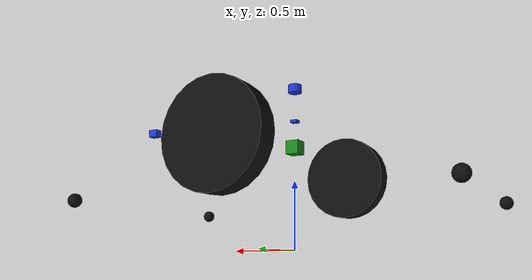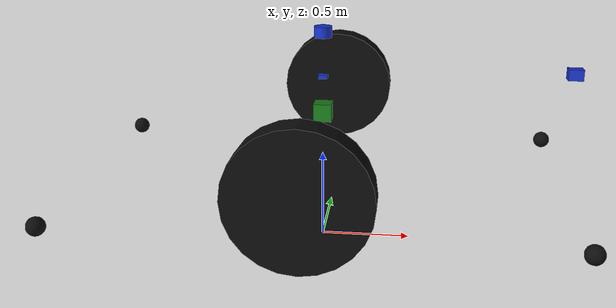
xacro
<?xml version="1.0"?>
<robot name="diff_robot_xacro" xmlns:xacro="http://ros.org/wiki/xacro">

  <!-- ===================== Parameters ===================== -->
  <!-- chassis -->
  <xacro:property name="base_length" value="2.8"/>
  <xacro:property name="base_width"  value="1.8"/>
  <xacro:property name="base_height" value="0.8"/>
  <xacro:property name="base_mass"   value="150.0"/>

  <!-- wheels (drive) -->
  <xacro:property name="wheel_radius"    value="0.35"/>
  <xacro:property name="wheel_thickness" value="0.15"/>
  <xacro:property name="wheel_mass"      value="10.0"/>
  <xacro:property name="track_width"     value="1.50"/>  <!-- (참고용) -->
  <!-- 지상고: 샤시 바닥이 지면에서 뜨도록 양수로 -->
  <xacro:property name="ground_clearance" value="-0.05"/>
  <xacro:property name="caster_lift" value="0.001"/>

  <!-- sensors -->
  <xacro:property name="lidar_mass" value="1.0"/>
  <xacro:property name="imu_mass"   value="0.2"/>
  <xacro:property name="cam_mass"   value="0.3"/>

  <!-- computed helpers -->
  <xacro:property name="half_h"  value="${base_height/2.0}"/>
  <xacro:property name="half_w"  value="${base_width/2.0}"/>
  <xacro:property name="half_l"  value="${base_length/2.0}"/>
  <xacro:property name="wheel_joint_z" value="${wheel_radius - half_h + ground_clearance}"/> <!-- usually negative -->
  <!-- 차체 밖으로 살짝 내보낸 위치 -->
  <xacro:property name="wheel_y" value="${half_w + wheel_thickness/2.0 + 0.01}"/>

  <!-- sensor poses (relative to base_link origin at box center) -->
  <xacro:property name="lidar_z" value="${half_h + 0.05}"/>   <!-- roof + 5cm -->
  <xacro:property name="imu_z"   value="0.2"/>
  <xacro:property name="cam_x"   value="${half_l - 0.05}"/>   <!-- just inside front face -->
  <xacro:property name="cam_z"   value="0.25"/>

  <!-- ===================== GZ Sim drive/odom params ===================== -->
  <xacro:property name="odometry_source" value="world"/>   <!-- encoders | world -->
  <xacro:property name="wheel_odom_topic" value="/odom"/>

  <xacro:property name="left_wheel_joint_name"  value="left_wheel_joint"/>
  <xacro:property name="right_wheel_joint_name" value="right_wheel_joint"/>

  <!-- compatibility aliases -->
  <xacro:property name="chassis_length" value="${base_length}"/>
  <xacro:property name="chassis_width"  value="${base_width}"/>
  <xacro:property name="chassis_height" value="${base_height}"/>

  <!-- 실제 좌우 휠 중심간 거리와 동기화 -->
  <xacro:property name="traction_track_width"  value="${2*wheel_y}"/>
  <xacro:property name="traction_wheel_radius" value="${wheel_radius}"/>
  <xacro:property name="traction_wheel_width"  value="${wheel_thickness}"/>

  <!-- ===================== Caster params ===================== -->
  <xacro:property name="trolley_wheel_radius" value="0.05"/>   <!-- 5 cm -->
  <xacro:property name="trolley_wheel_width"  value="0.02"/>   <!-- 2 cm -->
  <xacro:property name="trolley_track_width"  value="${chassis_width - 0.2}"/> <!-- slightly inset -->
  <xacro:property name="trolley_yaw_damping"  value="0.01"/>
  <xacro:property name="trolley_roll_damping" value="0.02"/>

  <!-- materials -->
  <material name="dark_grey"><color rgba="0.1 0.5 0.1 1.0"/></material>
  <material name="black"><color rgba="0.05 0.05 0.05 1.0"/></material>
  <material name="blue"><color rgba="0.1 0.2 0.8 1.0"/></material>

  <!-- ===================== Base & Footprint ===================== -->
  <link name="base_footprint"/>
  <link name="base_link"/>

  <joint name="base_joint" type="fixed">
        <parent link="base_footprint"/>
        <child link="base_link"/>
        <origin xyz="0.0 0 ${chassis_height/2.0 + traction_wheel_radius}" rpy="0 0 0.0" />
  </joint>

  <link name="chassis_link">
    <inertial>
      <mass value="${base_mass}"/>
      <inertia
        ixx="${(1.0/12.0)*base_mass*(base_width*base_width + base_height*base_height)}"
        iyy="${(1.0/12.0)*base_mass*(base_length*base_length + base_height*base_height)}"
        izz="${(1.0/12.0)*base_mass*(base_length*base_length + base_width*base_width)}"
        ixy="0" ixz="0" iyz="0"/>
      <origin xyz="0 0 0" rpy="0 0 0"/>
    </inertial>
    <visual>
      <geometry><box size="0.1 0.1 0.1"/></geometry>
      <material name="dark_grey"/>
    </visual>
    <collision>
      <origin xyz="0 0 0" rpy="0 0 0"/>
      <geometry><box size="${base_length} ${base_width} ${base_height}"/></geometry>
    </collision>

  </link>

  <joint name="chassis_joint" type="fixed">
        <parent link="base_link"/>
        <child link="chassis_link"/>
        <origin xyz="0.0 0 0" rpy="0 0 0.0" />
  </joint>

  <!-- base_footprint at the ground projection of base_link -->

  <!-- ===================== Drive Wheels ===================== -->
  <link name="left_wheel_link">
    <inertial>
      <mass value="${wheel_mass}"/>
      <!-- solid cylinder inertia: axis along +Y -->
      <inertia
        ixx="${(1.0/12.0)*wheel_mass*(3*wheel_radius*wheel_radius + wheel_thickness*wheel_thickness)}"
        iyy="${0.5*wheel_mass*wheel_radius*wheel_radius}"
        izz="${(1.0/12.0)*wheel_mass*(3*wheel_radius*wheel_radius + wheel_thickness*wheel_thickness)}"
        ixy="0" ixz="0" iyz="0"/>
    </inertial>
    <!-- ROTATION FIX: align cylinder axis (Z) to joint axis (Y) by +90° about X -->
    <visual>
      <origin rpy="1.57079632679 0 0" xyz="0 0 0"/>
      <geometry><cylinder radius="${wheel_radius}" length="${wheel_thickness}"/></geometry>
      <material name="black"/>
    </visual>
    <collision>
      <origin rpy="1.57079632679 0 0" xyz="0 0 0"/>
      <geometry><cylinder radius="${wheel_radius}" length="${wheel_thickness}"/></geometry>
      <surface>
        <friction>
          <ode>
            <mu>1.6</mu><mu2>1.6</mu2>
            <slip1>0.02</slip1><slip2>0.02</slip2>
          </ode>
        </friction>
      </surface>
    </collision>
  </link>

  <link name="right_wheel_link">
    <inertial>
      <mass value="${wheel_mass}"/>
      <inertia
        ixx="${(1.0/12.0)*wheel_mass*(3*wheel_radius*wheel_radius + wheel_thickness*wheel_thickness)}"
        iyy="${0.5*wheel_mass*wheel_radius*wheel_radius}"
        izz="${(1.0/12.0)*wheel_mass*(3*wheel_radius*wheel_radius + wheel_thickness*wheel_thickness)}"
        ixy="0" ixz="0" iyz="0"/>
    </inertial>
    <visual>
      <origin rpy="1.57079632679 0 0" xyz="0 0 0"/>
      <geometry><cylinder radius="${wheel_radius}" length="${wheel_thickness}"/></geometry>
      <material name="black"/>
    </visual>
    <collision>
      <origin rpy="1.57079632679 0 0" xyz="0 0 0"/>
      <geometry><cylinder radius="${wheel_radius}" length="${wheel_thickness}"/></geometry>
      <surface>
        <friction>
          <ode>
            <mu>1.6</mu><mu2>1.6</mu2>
            <slip1>0.02</slip1><slip2>0.02</slip2>
          </ode>
        </friction>
      </surface>
    </collision>
  </link>

  <joint name="left_wheel_joint" type="continuous">
    <parent link="base_link"/>
    <child  link="left_wheel_link"/>
    <origin xyz="0 ${wheel_y} ${wheel_joint_z}" rpy="0 0 0"/>
    <axis xyz="0 1 0"/>
    <limit effort="200.0" velocity="100.0"/>
    <dynamics damping="0.2" friction="0.0"/>
  </joint>

  <joint name="right_wheel_joint" type="continuous">
    <parent link="base_link"/>
    <child  link="right_wheel_link"/>
    <origin xyz="0 ${-wheel_y} ${wheel_joint_z}" rpy="0 0 0"/>
    <axis xyz="0 1 0"/>
    <limit effort="200.0" velocity="100.0"/>
    <dynamics damping="0.2" friction="0.0"/>
  </joint>

  <!-- ===================== Sensors (links only; plugins below) ===================== -->
  <!-- LiDAR (roof center) -->
  <link name="lidar_link">
    <inertial>
      <mass value="${lidar_mass}"/>
      <inertia ixx="0.002" ixy="0" ixz="0" iyy="0.002" iyz="0" izz="0.002"/>
    </inertial>
    <visual>
      <geometry><cylinder radius="0.05" length="0.06"/></geometry>
      <material name="blue"/>
    </visual>
    <collision><geometry><cylinder radius="0.05" length="0.06"/></geometry></collision>
  </link>
  <joint name="lidar_joint" type="fixed">
    <parent link="base_link"/>
    <child link="lidar_link"/>
    <origin xyz="0 0 ${lidar_z}" rpy="0 0 0"/>
  </joint>

  <!-- IMU (near COM) -->
  <link name="imu_link">
    <inertial>
      <mass value="${imu_mass}"/>
      <inertia ixx="0.0002" ixy="0" ixz="0" iyy="0.0002" iyz="0" izz="0.0002"/>
    </inertial>
    <visual><geometry><box size="0.05 0.05 0.02"/></geometry><material name="blue"/></visual>
    <collision><geometry><box size="0.05 0.05 0.02"/></geometry></collision>
  </link>
  <joint name="imu_joint" type="fixed">
    <parent link="base_link"/>
    <child link="imu_link"/>
    <origin xyz="0 0 ${imu_z}" rpy="0 0 0"/>
  </joint>

  <!-- Front 2D camera -->
  <link name="front_camera_link">
    <inertial>
      <mass value="${cam_mass}"/>
      <inertia ixx="0.0003" ixy="0" ixz="0" iyy="0.0003" iyz="0" izz="0.0003"/>
    </inertial>
    <visual><geometry><box size="0.08 0.06 0.06"/></geometry><material name="blue"/></visual>
    <collision><geometry><box size="0.08 0.06 0.06"/></geometry></collision>
  </link>
  <joint name="front_camera_joint" type="fixed">
    <parent link="base_link"/>
    <child link="front_camera_link"/>
    <origin xyz="${cam_x} 0 ${cam_z}" rpy="0 0 0"/>
  </joint>

  <!-- ===================== Caster Macro (Ball caster: Pitch + Roll + Sphere) ===================== -->
  <xacro:macro name="trolley_wheel"
               params="
                 cardinality:=front
                 dexterity:=left
                 origin_x:=0
                 origin_y:=0
                 origin_z:=${-chassis_height/2.0 + trolley_wheel_radius + ground_clearance + caster_lift}
               ">

  <xacro:macro name="sphere_inertia" params="m r">
    <inertia ixx="${2 * m * r * r / 5}" ixy="0" ixz="0" iyy="${2 * m * r * r / 5}" iyz="0" izz="${2 * m * r * r / 5}" />
  </xacro:macro>

    <xacro:property name="name" value="${cardinality}_${dexterity}_caster"/>

    <!-- 중간 피벗(피치) 링크 -->
    <link name="${name}_pitch_link">
      <inertial>
        <mass value="0.02"/>
        <inertia ixx="1e-5" ixy="0" ixz="0" iyy="1e-5" iyz="0" izz="1e-5"/>
      </inertial>
    </link>

    <!-- pitch: base_link -> pitch_link (X축) -->
    <joint name="${name}_pitch_joint" type="continuous">
      <parent link="base_link"/>
      <child  link="${name}_pitch_link"/>
      <origin xyz="${origin_x} ${origin_y} ${origin_z}" rpy="0 0 0"/>
      <axis xyz="1 0 0"/>
      <limit effort="50" velocity="100"/>
      <dynamics damping="0.01"/>
    </joint>

    <!-- 볼(구) 캐스터 링크 -->
    <link name="${name}_ball_link">
      <inertial>
        <mass value="0.15"/>
        <xacro:sphere_inertia m="0.15" r="${trolley_wheel_radius}"/>
      </inertial>
      <visual>
        <origin xyz="0 0 0" rpy="0 0 0"/>
        <geometry><sphere radius="${trolley_wheel_radius}"/></geometry>
        <material name="black"/>
      </visual>
      <collision>
        <origin xyz="0 0 0" rpy="0 0 0"/>
        <geometry><sphere radius="${trolley_wheel_radius}"/></geometry>
        <surface>
          <friction>
            <ode>
              <mu>0.0</mu><mu2>0.0</mu2>
              <slip1>0.01</slip1><slip2>0.01</slip2>
            </ode>
          </friction>
        </surface>
      </collision>
    </link>

    <!-- roll: pitch_link -> ball_link (Y축) -->
    <joint name="${name}_roll_joint" type="continuous">
      <parent link="${name}_pitch_link"/>
      <child  link="${name}_ball_link"/>
      <origin xyz="0 0 0" rpy="0 0 0"/>
      <axis xyz="0 1 0"/>
      <limit effort="50" velocity="100"/>
      <dynamics damping="0.01"/>
    </joint>

    <gazebo reference="${name}_ball_link">
      <material>Gazebo/Black</material>
    </gazebo>
  </xacro:macro>

  <!-- ===================== Caster Instances (4 wheels) ===================== -->
  <!-- FRONT -->
  <xacro:trolley_wheel cardinality="front" dexterity="left"
    origin_x="${chassis_length/2.0 - 0.05}"
    origin_y="${trolley_track_width/2.0}"/>
  <xacro:trolley_wheel cardinality="front" dexterity="right"
    origin_x="${chassis_length/2.0 - 0.05}"
    origin_y="${-trolley_track_width/2.0}"/>

  <!-- BACK -->
  <xacro:trolley_wheel cardinality="back" dexterity="left"
    origin_x="${-chassis_length/2.0 + 0.05}"
    origin_y="${trolley_track_width/2.0}"/>
  <xacro:trolley_wheel cardinality="back" dexterity="right"
    origin_x="${-chassis_length/2.0 + 0.05}"
    origin_y="${-trolley_track_width/2.0}"/>

  <!-- ===================== Gazebo/Ignition Sensors (Classic-style blocks kept) ===================== -->
  <gazebo reference="lidar_link">
    <sensor name="3d_lidar" type="gpu_lidar">
      <always_on>true</always_on>
      <visualize>true</visualize>
      <update_rate>20</update_rate>
      <gz_frame_id>lidar_link</gz_frame_id>
      <topic>/scan</topic>
      <lidar>
        <scan>
          <horizontal>
            <samples>1440</samples>
            <resolution>1</resolution>
            <min_angle>-3.14159265</min_angle>
            <max_angle>3.14159265</max_angle>
          </horizontal>
          <vertical>
            <samples>16</samples>
            <resolution>1</resolution>
            <min_angle>-0.127409</min_angle>
            <max_angle> 0.617846</max_angle>
          </vertical>
        </scan>
        <range>
          <min>0.3</min>
          <max>62.0</max>
          <resolution>0.01</resolution>
        </range>
        <noise>
          <type>gaussian</type>
          <mean>0.0</mean>
          <stddev>0.01</stddev>
        </noise>
      </lidar>
    </sensor>
  </gazebo>

  <gazebo reference="imu_link">
    <sensor name="imu_sensor" type="imu">
      <always_on>true</always_on>
      <update_rate>100</update_rate>
      <gz_frame_id>imu_link</gz_frame_id>
      <topic>/imu</topic>
    </sensor>
  </gazebo>

  <gazebo reference="front_camera_link">
    <sensor name="front_camera" type="camera">
      <always_on>true</always_on>
      <update_rate>30</update_rate>
      <gz_frame_id>front_camera_link</gz_frame_id>
      <topic>/front_camera/image</topic>
      <camera>
        <horizontal_fov>1.3962634</horizontal_fov>
        <image>
          <width>1280</width>
          <height>720</height>
          <format>R8G8B8</format>
        </image>
        <clip>
          <near>0.1</near>
          <far>100.0</far>
        </clip>
      </camera>
    </sensor>
  </gazebo>

  <!-- Gazebo visuals -->
  <gazebo reference="base_link"><material>Gazebo/DarkGrey</material></gazebo>
  <gazebo reference="left_wheel_link"><material>Gazebo/Black</material></gazebo>
  <gazebo reference="right_wheel_link"><material>Gazebo/Black</material></gazebo>

  <!-- ===================== GZ Sim System Plugins ===================== -->
  <gazebo>
    <plugin filename="gz-sim-sensors-system" name="gz::sim::systems::Sensors">
      <render_engine>ogre2</render_engine>
    </plugin>

    <plugin filename="gz-sim-imu-system" name="gz::sim::systems::Imu">
    </plugin>

    <plugin filename="gz-sim-joint-state-publisher-system" name="gz::sim::systems::JointStatePublisher">
    </plugin>
    <!-- ........................... DIFFERENTIAL DRIVE PLUGIN ................................... -->
    <plugin filename="gz-sim-diff-drive-system" name="gz::sim::systems::DiffDrive">
      <left_joint>${left_wheel_joint_name}</left_joint>
      <right_joint>${right_wheel_joint_name}</right_joint>
      <wheel_separation>${traction_track_width}</wheel_separation>
      <wheel_radius>${traction_wheel_radius}</wheel_radius>

      <odom_publish_frequency>20</odom_publish_frequency>
      <topic>/cmd_vel</topic>

      <xacro:if value="${odometry_source == 'encoders'}">
        <odom_topic>${wheel_odom_topic}</odom_topic>
        <tf_topic>/tf</tf_topic>
      </xacro:if>

      <frame_id>odom</frame_id>
      <child_frame_id>base_footprint</child_frame_id>
    </plugin>

    <!-- ............................. ground truth .................................... -->
    <xacro:if value="${odometry_source == 'world'}">
      <plugin filename="gz-sim-odometry-publisher-system"
              name="gz::sim::systems::OdometryPublisher">
        <odom_frame>odom</odom_frame>
        <robot_base_frame>base_footprint</robot_base_frame>
        <odom_topic>${wheel_odom_topic}</odom_topic>
        <tf_topic>/tf</tf_topic>
        <dimensions>2</dimensions>
        <odom_publish_frequency>20</odom_publish_frequency>
      </plugin>
    </xacro:if>
  </gazebo>

</robot>
